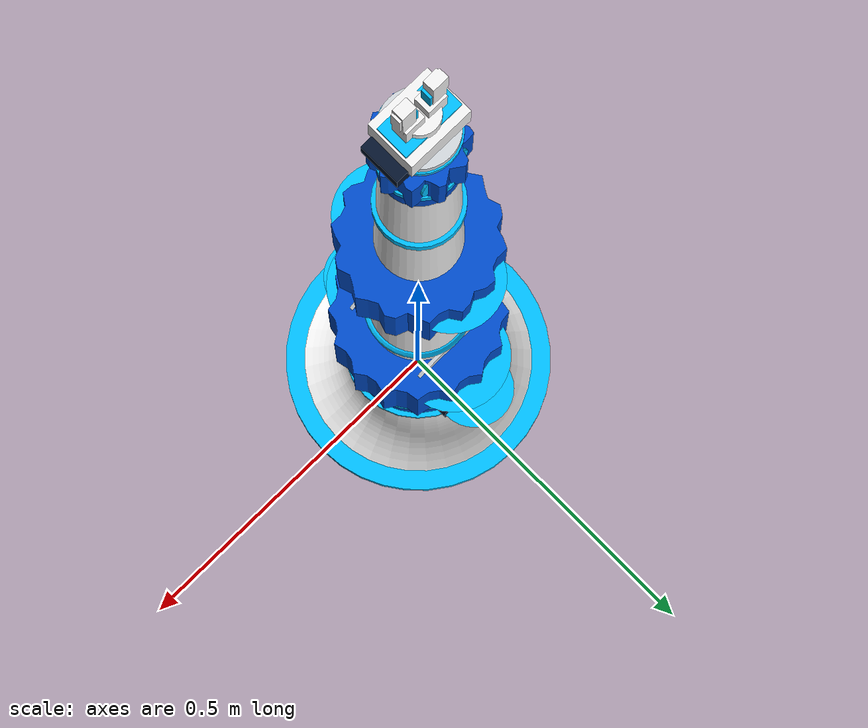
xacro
<?xml version="1.0"?>
<robot name="auron_robot" xmlns:xacro="http://www.ros.org/wiki/xacro">

  <!-- Include sub-xacro files -->
  <xacro:include filename="materials.xacro"/>
  <xacro:include filename="robot_constants.xacro"/>
  <xacro:include filename="gazebo.xacro"/>
  <xacro:include filename="robot_control.xacro"/>

  <!-- WORLD & BASE LINK                          -->
  <link name="world"/>

  <joint name="world_joint" type="fixed">
    <parent link="world"/>
    <child link="base_link"/>
    <origin xyz="0 0 0" rpy="0 0 0"/>
  </joint>

  <!-- Base Link: Flared pedestal base with cyan trim ring -->
  <link name="base_link">
    <!-- Visual: Flared white pedestal -->
    <visual>
      <origin xyz="0 0 0" rpy="0 0 0"/>
      <geometry>
        <mesh filename="package://auron_robot_description/meshes/base/base_pedestal.stl"/>
      </geometry>
      <material name="auron_white"/>
    </visual>
    <!-- Visual: Lower cyan trim ring -->
    <visual>
      <origin xyz="0 0 0.002" rpy="0 0 0"/>
      <geometry>
        <mesh filename="package://auron_robot_description/meshes/base/base_accent_ring.stl"/>
      </geometry>
      <material name="auron_cyan"/>
    </visual>
    <!-- Visual: Upper collar cyan ring -->
    <visual>
      <origin xyz="0 0 0.118" rpy="0 0 0"/>
      <geometry>
        <cylinder radius="0.102" length="0.006"/>
      </geometry>
      <material name="auron_cyan"/>
    </visual>
    <!-- Simplified collision -->
    <collision>
      <origin xyz="0 0 0.06" rpy="0 0 0"/>
      <geometry>
        <cylinder radius="0.18" length="0.12"/>
      </geometry>
    </collision>
    <xacro:cylinder_inertia m="8.0" r="0.18" h="0.12"/>
  </link>

  <!-- JOINT 1: Base Rotation (J1)                -->
  <joint name="joint_1" type="revolute">
    <parent link="base_link"/>
    <child link="base_rotation_link"/>
    <origin xyz="0 0 0.12" rpy="0 0 0"/>
    <axis xyz="0 0 1"/>
    <limit lower="${j1_lower}" upper="${j1_upper}" effort="${j1_effort}" velocity="${j1_velocity}"/>
    <dynamics damping="${arm_damping}" friction="${arm_friction}"/>
  </joint>

  <!-- Base Rotation Link: Blue turret with gear-like hub & side details -->
  <link name="base_rotation_link">
    <!-- Visual: Central turret body -->
    <visual>
      <origin xyz="0 0 0" rpy="0 0 0"/>
      <geometry>
        <mesh filename="package://auron_robot_description/meshes/base/base_turret.stl"/>
      </geometry>
      <material name="auron_blue"/>
    </visual>
    <!-- Visual: Cyan accent waist ring -->
    <visual>
      <origin xyz="0 0 0.04" rpy="0 0 0"/>
      <geometry>
        <cylinder radius="0.098" length="0.012"/>
      </geometry>
      <material name="auron_cyan"/>
    </visual>
    <!-- Visual: Left circular actuator cover -->
    <visual>
      <origin xyz="0 -0.095 0.08" rpy="1.570796 0 0"/>
      <geometry>
        <cylinder radius="0.055" length="0.02"/>
      </geometry>
      <material name="auron_dark_blue"/>
    </visual>
    <!-- Visual: Left cyan turbine hub -->
    <visual>
      <origin xyz="0 -0.106 0.08" rpy="1.570796 0 0"/>
      <geometry>
        <mesh filename="package://auron_robot_description/meshes/shoulder/shoulder_turbine.stl" scale="0.7 0.7 0.7"/>
      </geometry>
      <material name="auron_cyan"/>
    </visual>
    <!-- Visual: Right circular actuator cover -->
    <visual>
      <origin xyz="0 0.095 0.08" rpy="1.570796 0 0"/>
      <geometry>
        <cylinder radius="0.055" length="0.02"/>
      </geometry>
      <material name="auron_dark_blue"/>
    </visual>
    <!-- Visual: Right cyan turbine hub -->
    <visual>
      <origin xyz="0 0.106 0.08" rpy="-1.570796 0 0"/>
      <geometry>
        <mesh filename="package://auron_robot_description/meshes/shoulder/shoulder_turbine.stl" scale="0.7 0.7 0.7"/>
      </geometry>
      <material name="auron_cyan"/>
    </visual>
    <!-- Collision -->
    <collision>
      <origin xyz="0 0 0.08" rpy="0 0 0"/>
      <geometry>
        <cylinder radius="0.11" length="0.16"/>
      </geometry>
    </collision>
    <xacro:cylinder_inertia m="4.5" r="0.11" h="0.16"/>
  </link>

  <!-- JOINT 2: Shoulder Pitch (J2)               -->
  <joint name="joint_2" type="revolute">
    <parent link="base_rotation_link"/>
    <child link="shoulder_link"/>
    <origin xyz="0 0 0.16" rpy="0 0 0"/>
    <axis xyz="0 1 0"/>
    <limit lower="${j2_lower}" upper="${j2_upper}" effort="${j2_effort}" velocity="${j2_velocity}"/>
    <dynamics damping="${arm_damping}" friction="${arm_friction}"/>
  </joint>

  <!-- Shoulder Link: Circular gear housing with dual turbine faceplates -->
  <link name="shoulder_link">
    <!-- Visual: Geared circular housing -->
    <visual>
      <origin xyz="0 0 0" rpy="1.570796 0 0"/>
      <geometry>
        <mesh filename="package://auron_robot_description/meshes/shoulder/shoulder_housing.stl"/>
      </geometry>
      <material name="auron_blue"/>
    </visual>
    <!-- Visual: Outer silver bolt ring left -->
    <visual>
      <origin xyz="0 -0.062 0" rpy="1.570796 0 0"/>
      <geometry>
        <cylinder radius="0.085" length="0.005"/>
      </geometry>
      <material name="auron_metal_silver"/>
    </visual>
    <!-- Visual: Left cyan turbine disc -->
    <visual>
      <origin xyz="0 -0.065 0" rpy="1.570796 0 0"/>
      <geometry>
        <mesh filename="package://auron_robot_description/meshes/shoulder/shoulder_turbine.stl"/>
      </geometry>
      <material name="auron_cyan"/>
    </visual>
    <!-- Visual: Outer silver bolt ring right -->
    <visual>
      <origin xyz="0 0.062 0" rpy="1.570796 0 0"/>
      <geometry>
        <cylinder radius="0.085" length="0.005"/>
      </geometry>
      <material name="auron_metal_silver"/>
    </visual>
    <!-- Visual: Right cyan turbine disc -->
    <visual>
      <origin xyz="0 0.065 0" rpy="-1.570796 0 0"/>
      <geometry>
        <mesh filename="package://auron_robot_description/meshes/shoulder/shoulder_turbine.stl"/>
      </geometry>
      <material name="auron_cyan"/>
    </visual>
    <!-- Collision -->
    <collision>
      <origin xyz="0 0 0" rpy="1.570796 0 0"/>
      <geometry>
        <cylinder radius="0.12" length="0.15"/>
      </geometry>
    </collision>
    <xacro:cylinder_inertia m="5.5" r="0.12" h="0.15"/>
  </link>

  <!-- Connection to Upper Arm Link -->
  <joint name="upper_arm_joint" type="fixed">
    <parent link="shoulder_link"/>
    <child link="upper_arm_link"/>
    <origin xyz="0 0 0.06" rpy="0 0 0"/>
  </joint>

  <!-- Upper Arm Link: White shell with cyan accent collar -->
  <link name="upper_arm_link">
    <!-- Visual: Cylindrical white arm body -->
    <visual>
      <origin xyz="0 0 0" rpy="0 0 0"/>
      <geometry>
        <mesh filename="package://auron_robot_description/meshes/upper_arm/upper_arm_body.stl"/>
      </geometry>
      <material name="auron_white"/>
    </visual>
    <!-- Visual: Lower cyan accent ring -->
    <visual>
      <origin xyz="0 0 0.04" rpy="0 0 0"/>
      <geometry>
        <mesh filename="package://auron_robot_description/meshes/upper_arm/upper_arm_ring.stl"/>
      </geometry>
      <material name="auron_cyan"/>
    </visual>
    <!-- Visual: Upper cyan accent ring -->
    <visual>
      <origin xyz="0 0 0.30" rpy="0 0 0"/>
      <geometry>
        <mesh filename="package://auron_robot_description/meshes/upper_arm/upper_arm_ring.stl"/>
      </geometry>
      <material name="auron_cyan"/>
    </visual>
    <!-- Collision -->
    <collision>
      <origin xyz="0 0 0.18" rpy="0 0 0"/>
      <geometry>
        <cylinder radius="0.07" length="0.36"/>
      </geometry>
    </collision>
    <xacro:cylinder_inertia m="4.0" r="0.07" h="0.36"/>
  </link>

  <!-- JOINT 3: Elbow Pitch (J3)                  -->
  <joint name="joint_3" type="revolute">
    <parent link="upper_arm_link"/>
    <child link="elbow_link"/>
    <origin xyz="0 0 0.36" rpy="0 0 0"/>
    <axis xyz="0 1 0"/>
    <limit lower="${j3_lower}" upper="${j3_upper}" effort="${j3_effort}" velocity="${j3_velocity}"/>
    <dynamics damping="${arm_damping}" friction="${arm_friction}"/>
  </joint>

  <!-- Elbow Link: Circular housing matching shoulder -->
  <link name="elbow_link">
    <!-- Visual: Circular geared elbow housing -->
    <visual>
      <origin xyz="0 0 0" rpy="1.570796 0 0"/>
      <geometry>
        <mesh filename="package://auron_robot_description/meshes/elbow/elbow_housing.stl"/>
      </geometry>
      <material name="auron_blue"/>
    </visual>
    <!-- Visual: Left cyan turbine disc -->
    <visual>
      <origin xyz="0 -0.052 0" rpy="1.570796 0 0"/>
      <geometry>
        <mesh filename="package://auron_robot_description/meshes/elbow/elbow_turbine.stl"/>
      </geometry>
      <material name="auron_cyan"/>
    </visual>
    <!-- Visual: Right cyan turbine disc -->
    <visual>
      <origin xyz="0 0.052 0" rpy="-1.570796 0 0"/>
      <geometry>
        <mesh filename="package://auron_robot_description/meshes/elbow/elbow_turbine.stl"/>
      </geometry>
      <material name="auron_cyan"/>
    </visual>
    <!-- Collision -->
    <collision>
      <origin xyz="0 0 0" rpy="1.570796 0 0"/>
      <geometry>
        <cylinder radius="0.10" length="0.12"/>
      </geometry>
    </collision>
    <xacro:cylinder_inertia m="3.2" r="0.10" h="0.12"/>
  </link>

  <!-- Connection to Forearm Link -->
  <joint name="forearm_joint" type="fixed">
    <parent link="elbow_link"/>
    <child link="forearm_link"/>
    <origin xyz="0 0 0.05" rpy="0 0 0"/>
  </joint>

  <!-- Forearm Link: Sleek white forearm shell -->
  <link name="forearm_link">
    <!-- Visual: White forearm body -->
    <visual>
      <origin xyz="0 0 0" rpy="0 0 0"/>
      <geometry>
        <mesh filename="package://auron_robot_description/meshes/forearm/forearm_body.stl"/>
      </geometry>
      <material name="auron_white"/>
    </visual>
    <!-- Visual: Cyan accent stripe -->
    <visual>
      <origin xyz="0 0 0.16" rpy="0 0 0"/>
      <geometry>
        <cylinder radius="0.052" length="0.015"/>
      </geometry>
      <material name="auron_cyan"/>
    </visual>
    <!-- Collision -->
    <collision>
      <origin xyz="0 0 0.16" rpy="0 0 0"/>
      <geometry>
        <cylinder radius="0.055" length="0.32"/>
      </geometry>
    </collision>
    <xacro:cylinder_inertia m="2.8" r="0.055" h="0.32"/>
  </link>

  <!-- JOINT 4: Wrist Roll (J4)                   -->
  <joint name="joint_4" type="revolute">
    <parent link="forearm_link"/>
    <child link="wrist_1_link"/>
    <origin xyz="0 0 0.32" rpy="0 0 0"/>
    <axis xyz="0 0 1"/>
    <limit lower="${j4_lower}" upper="${j4_upper}" effort="${j4_effort}" velocity="${j4_velocity}"/>
    <dynamics damping="${wrist_damping}" friction="${wrist_friction}"/>
  </joint>

  <!-- Wrist 1 Link: Compact blue/cyan cylindrical housing -->
  <link name="wrist_1_link">
    <visual>
      <origin xyz="0 0 0" rpy="0 0 0"/>
      <geometry>
        <mesh filename="package://auron_robot_description/meshes/wrist/wrist_1.stl"/>
      </geometry>
      <material name="auron_blue"/>
    </visual>
    <!-- Visual: Cyan accent ring -->
    <visual>
      <origin xyz="0 0 0.03" rpy="0 0 0"/>
      <geometry>
        <cylinder radius="0.046" length="0.01"/>
      </geometry>
      <material name="auron_cyan"/>
    </visual>
    <!-- Collision -->
    <collision>
      <origin xyz="0 0 0.03" rpy="0 0 0"/>
      <geometry>
        <cylinder radius="0.048" length="0.06"/>
      </geometry>
    </collision>
    <xacro:cylinder_inertia m="1.2" r="0.048" h="0.06"/>
  </link>

  <!-- JOINT 5: Wrist Pitch (J5)                  -->
  <joint name="joint_5" type="revolute">
    <parent link="wrist_1_link"/>
    <child link="wrist_2_link"/>
    <origin xyz="0 0 0.06" rpy="0 0 0"/>
    <axis xyz="0 1 0"/>
    <limit lower="${j5_lower}" upper="${j5_upper}" effort="${j5_effort}" velocity="${j5_velocity}"/>
    <dynamics damping="${wrist_damping}" friction="${wrist_friction}"/>
  </joint>

  <!-- Wrist 2 Link: Compact circular pivot -->
  <link name="wrist_2_link">
    <visual>
      <origin xyz="0 0 0" rpy="1.570796 0 0"/>
      <geometry>
        <mesh filename="package://auron_robot_description/meshes/wrist/wrist_2.stl"/>
      </geometry>
      <material name="auron_blue"/>
    </visual>
    <!-- Visual: Cyan pivot discs -->
    <visual>
      <origin xyz="0 -0.034 0" rpy="1.570796 0 0"/>
      <geometry>
        <cylinder radius="0.032" length="0.005"/>
      </geometry>
      <material name="auron_cyan"/>
    </visual>
    <visual>
      <origin xyz="0 0.034 0" rpy="1.570796 0 0"/>
      <geometry>
        <cylinder radius="0.032" length="0.005"/>
      </geometry>
      <material name="auron_cyan"/>
    </visual>
    <!-- Collision -->
    <collision>
      <origin xyz="0 0 0" rpy="1.570796 0 0"/>
      <geometry>
        <cylinder radius="0.05" length="0.07"/>
      </geometry>
    </collision>
    <xacro:cylinder_inertia m="1.0" r="0.05" h="0.07"/>
  </link>

  <!-- JOINT 6: Wrist Tool Roll (J6)              -->
  <joint name="joint_6" type="revolute">
    <parent link="wrist_2_link"/>
    <child link="wrist_3_link"/>
    <origin xyz="0 0 0.05" rpy="0 0 0"/>
    <axis xyz="0 0 1"/>
    <limit lower="${j6_lower}" upper="${j6_upper}" effort="${j6_effort}" velocity="${j6_velocity}"/>
    <dynamics damping="${wrist_damping}" friction="${wrist_friction}"/>
  </joint>

  <!-- Wrist 3 Link: Metallic tool mounting flange -->
  <link name="wrist_3_link">
    <visual>
      <origin xyz="0 0 0" rpy="0 0 0"/>
      <geometry>
        <mesh filename="package://auron_robot_description/meshes/wrist/wrist_3_flange.stl"/>
      </geometry>
      <material name="auron_metal_silver"/>
    </visual>
    <!-- Visual: Cyan bezel ring -->
    <visual>
      <origin xyz="0 0 0.012" rpy="0 0 0"/>
      <geometry>
        <cylinder radius="0.044" length="0.006"/>
      </geometry>
      <material name="auron_cyan"/>
    </visual>
    <!-- Collision -->
    <collision>
      <origin xyz="0 0 0.012" rpy="0 0 0"/>
      <geometry>
        <cylinder radius="0.044" length="0.025"/>
      </geometry>
    </collision>
    <xacro:cylinder_inertia m="0.6" r="0.044" h="0.025"/>
  </link>

  <!-- TOOL0 FRAME                                -->
  <joint name="tool0_joint" type="fixed">
    <parent link="wrist_3_link"/>
    <child link="tool0"/>
    <origin xyz="0 0 0.025" rpy="0 0 0"/>
  </joint>

  <link name="tool0"/>

  <!-- GRIPPER ASSEMBLY                           -->
  <joint name="gripper_base_joint" type="fixed">
    <parent link="tool0"/>
    <child link="gripper_base"/>
    <origin xyz="0 0 0" rpy="0 0 0"/>
  </joint>

  <!-- Gripper Base Chassis -->
  <link name="gripper_base">
    <visual>
      <origin xyz="0 0 0" rpy="0 0 0"/>
      <geometry>
        <mesh filename="package://auron_robot_description/meshes/gripper/gripper_base.stl"/>
      </geometry>
      <material name="auron_white"/>
    </visual>
    <!-- Visual: Blue actuator cylinder -->
    <visual>
      <origin xyz="0 0 0.015" rpy="0 0 0"/>
      <geometry>
        <cylinder radius="0.018" length="0.035"/>
      </geometry>
      <material name="auron_blue"/>
    </visual>
    <!-- Visual: Cyan guide rail plate -->
    <visual>
      <origin xyz="0 0 0.036" rpy="0 0 0"/>
      <geometry>
        <box size="0.075 0.04 0.005"/>
      </geometry>
      <material name="auron_cyan"/>
    </visual>
    <!-- Collision -->
    <collision>
      <origin xyz="0 0 0.02" rpy="0 0 0"/>
      <geometry>
        <box size="0.08 0.06 0.04"/>
      </geometry>
    </collision>
    <xacro:box_inertia m="0.5" x="0.08" y="0.06" z="0.04"/>
  </link>

  <!-- Left Finger (Prismatic) -->
  <joint name="left_finger_joint" type="prismatic">
    <parent link="gripper_base"/>
    <child link="left_finger"/>
    <origin xyz="0.015 0 0.038" rpy="0 0 0"/>
    <axis xyz="1 0 0"/>
    <limit lower="${gripper_lower}" upper="${gripper_upper}" effort="${gripper_effort}" velocity="${gripper_velocity}"/>
    <dynamics damping="${gripper_damping}" friction="${gripper_friction}"/>
  </joint>

  <link name="left_finger">
    <visual>
      <origin xyz="0 0 0" rpy="0 0 0"/>
      <geometry>
        <mesh filename="package://auron_robot_description/meshes/gripper/gripper_finger.stl"/>
      </geometry>
      <material name="auron_white"/>
    </visual>
    <!-- High-friction cyan inner pad -->
    <visual>
      <origin xyz="-0.005 0 0.04" rpy="0 0 0"/>
      <geometry>
        <box size="0.004 0.012 0.03"/>
      </geometry>
      <material name="auron_cyan"/>
    </visual>
    <!-- Collision -->
    <collision>
      <origin xyz="0.005 0 0.035" rpy="0 0 0"/>
      <geometry>
        <box size="0.025 0.02 0.07"/>
      </geometry>
    </collision>
    <xacro:box_inertia m="0.08" x="0.025" y="0.02" z="0.07"/>
  </link>

  <!-- Right Finger (Prismatic, symmetrical motion) -->
  <joint name="right_finger_joint" type="prismatic">
    <parent link="gripper_base"/>
    <child link="right_finger"/>
    <origin xyz="-0.015 0 0.038" rpy="0 0 3.14159265"/>
    <axis xyz="1 0 0"/>
    <limit lower="${gripper_lower}" upper="${gripper_upper}" effort="${gripper_effort}" velocity="${gripper_velocity}"/>
    <dynamics damping="${gripper_damping}" friction="${gripper_friction}"/>
  </joint>

  <link name="right_finger">
    <visual>
      <origin xyz="0 0 0" rpy="0 0 0"/>
      <geometry>
        <mesh filename="package://auron_robot_description/meshes/gripper/gripper_finger.stl"/>
      </geometry>
      <material name="auron_white"/>
    </visual>
    <!-- High-friction cyan inner pad -->
    <visual>
      <origin xyz="-0.005 0 0.04" rpy="0 0 0"/>
      <geometry>
        <box size="0.004 0.012 0.03"/>
      </geometry>
      <material name="auron_cyan"/>
    </visual>
    <!-- Collision -->
    <collision>
      <origin xyz="0.005 0 0.035" rpy="0 0 0"/>
      <geometry>
        <box size="0.025 0.02 0.07"/>
      </geometry>
    </collision>
    <xacro:box_inertia m="0.08" x="0.025" y="0.02" z="0.07"/>
  </link>

  <!-- Gripper Center Tool Frame -->
  <joint name="gripper_tcp_joint" type="fixed">
    <parent link="gripper_base"/>
    <child link="gripper_tcp"/>
    <origin xyz="0 0 0.10" rpy="0 0 0"/>
  </joint>
  <link name="gripper_tcp"/>

  <!-- CAMERA LINK & OPTICAL FRAME                -->
  <!-- Eye-in-hand camera mounted on wrist_3_link -->
  <joint name="camera_joint" type="fixed">
    <parent link="wrist_3_link"/>
    <child link="camera_link"/>
    <origin xyz="0.045 0 0.02" rpy="0 -1.570796 0"/>
  </joint>

  <link name="camera_link">
    <visual>
      <origin xyz="0 0 0" rpy="0 0 0"/>
      <geometry>
        <box size="0.02 0.05 0.02"/>
      </geometry>
      <material name="auron_dark_blue"/>
    </visual>
    <collision>
      <origin xyz="0 0 0" rpy="0 0 0"/>
      <geometry>
        <box size="0.02 0.05 0.02"/>
      </geometry>
    </collision>
    <xacro:box_inertia m="0.05" x="0.02" y="0.05" z="0.02"/>
  </link>

  <joint name="camera_optical_joint" type="fixed">
    <parent link="camera_link"/>
    <child link="camera_optical_frame"/>
    <origin xyz="0 0 0" rpy="-1.570796 0 -1.570796"/>
  </joint>

  <link name="camera_optical_frame"/>

</robot>

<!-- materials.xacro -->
<robot xmlns:xacro="http://www.ros.org/wiki/xacro">
  <!-- Auron Robot Colors matching visual design reference:
       White arm body, Industrial Blue mechanical housings,
       Cyan accent rings/turbines, Dark Blue accents, Metallic silver -->

  <material name="auron_white">
    <color rgba="0.95 0.95 0.95 1.0"/>
  </material>

  <material name="auron_blue">
    <color rgba="0.00 0.30 0.80 1.0"/>
  </material>

  <material name="auron_cyan">
    <color rgba="0.00 0.75 1.00 1.0"/>
  </material>

  <material name="auron_dark_blue">
    <color rgba="0.02 0.08 0.18 1.0"/>
  </material>

  <material name="auron_metal_silver">
    <color rgba="0.82 0.84 0.86 1.0"/>
  </material>

  <material name="auron_dark_grey">
    <color rgba="0.18 0.18 0.20 1.0"/>
  </material>
</robot>

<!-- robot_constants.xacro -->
<robot xmlns:xacro="http://www.ros.org/wiki/xacro">

  <!-- Mathematical constants -->
  <xacro:property name="PI" value="3.1415926535897931"/>

  <!-- Joint limits (user specification & physical consistency) -->
  <!-- J1: Base rotation (-180 to +180 deg) -->
  <xacro:property name="j1_lower" value="-3.14159"/>
  <xacro:property name="j1_upper" value="3.14159"/>
  <xacro:property name="j1_velocity" value="2.0"/>
  <xacro:property name="j1_effort" value="180.0"/>

  <!-- J2: Shoulder (-120 to +120 deg) -->
  <xacro:property name="j2_lower" value="-2.0944"/>
  <xacro:property name="j2_upper" value="2.0944"/>
  <xacro:property name="j2_velocity" value="2.0"/>
  <xacro:property name="j2_effort" value="180.0"/>

  <!-- J3: Elbow (-150 to +150 deg) -->
  <xacro:property name="j3_lower" value="-2.61799"/>
  <xacro:property name="j3_upper" value="2.61799"/>
  <xacro:property name="j3_velocity" value="2.5"/>
  <xacro:property name="j3_effort" value="120.0"/>

  <!-- J4: Wrist rotation (-180 to +180 deg) -->
  <xacro:property name="j4_lower" value="-3.14159"/>
  <xacro:property name="j4_upper" value="3.14159"/>
  <xacro:property name="j4_velocity" value="3.0"/>
  <xacro:property name="j4_effort" value="60.0"/>

  <!-- J5: Wrist pitch (-120 to +120 deg) -->
  <xacro:property name="j5_lower" value="-2.0944"/>
  <xacro:property name="j5_upper" value="2.0944"/>
  <xacro:property name="j5_velocity" value="3.0"/>
  <xacro:property name="j5_effort" value="40.0"/>

  <!-- J6: Wrist/tool rotation (-360 to +360 deg) -->
  <xacro:property name="j6_lower" value="-6.28318"/>
  <xacro:property name="j6_upper" value="6.28318"/>
  <xacro:property name="j6_velocity" value="3.5"/>
  <xacro:property name="j6_effort" value="30.0"/>

  <!-- Gripper finger limits (0.0 to 0.04m stroke) -->
  <xacro:property name="gripper_lower" value="0.0"/>
  <xacro:property name="gripper_upper" value="0.035"/>
  <xacro:property name="gripper_velocity" value="0.1"/>
  <xacro:property name="gripper_effort" value="40.0"/>

  <!-- Dynamics properties for oscillation damping in Gazebo Harmonic -->
  <xacro:property name="arm_damping" value="2.0"/>
  <xacro:property name="arm_friction" value="1.0"/>
  <xacro:property name="wrist_damping" value="0.5"/>
  <xacro:property name="wrist_friction" value="0.2"/>
  <xacro:property name="gripper_damping" value="0.1"/>
  <xacro:property name="gripper_friction" value="0.1"/>

  <!-- Standard geometric inertia macros -->
  <xacro:macro name="cylinder_inertia" params="m r h">
    <inertial>
      <mass value="${m}"/>
      <inertia ixx="${(m/12.0) * (3*r*r + h*h)}" ixy="0.0" ixz="0.0"
               iyy="${(m/12.0) * (3*r*r + h*h)}" iyz="0.0"
               izz="${(m/2.0) * (r*r)}"/>
    </inertial>
  </xacro:macro>

  <xacro:macro name="box_inertia" params="m x y z">
    <inertial>
      <mass value="${m}"/>
      <inertia ixx="${(m/12.0) * (y*y + z*z)}" ixy="0.0" ixz="0.0"
               iyy="${(m/12.0) * (x*x + z*z)}" iyz="0.0"
               izz="${(m/12.0) * (x*x + y*y)}"/>
    </inertial>
  </xacro:macro>

  <xacro:macro name="sphere_inertia" params="m r">
    <inertial>
      <mass value="${m}"/>
      <inertia ixx="${(2.0/5.0) * m * r * r}" ixy="0.0" ixz="0.0"
               iyy="${(2.0/5.0) * m * r * r}" iyz="0.0"
               izz="${(2.0/5.0) * m * r * r}"/>
    </inertial>
  </xacro:macro>

</robot>
